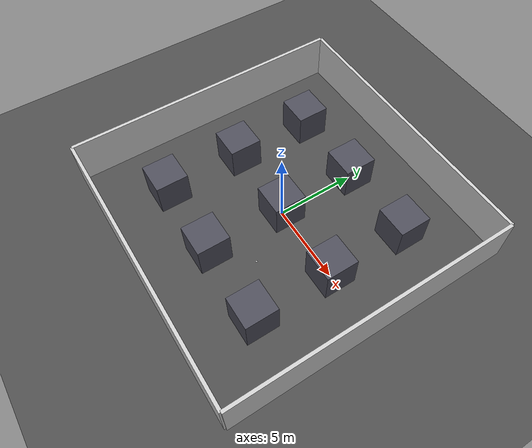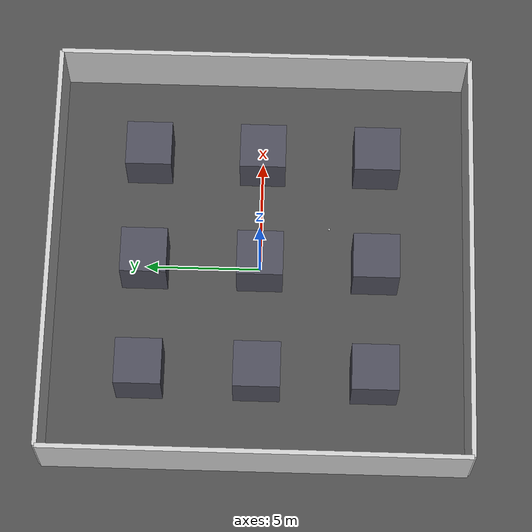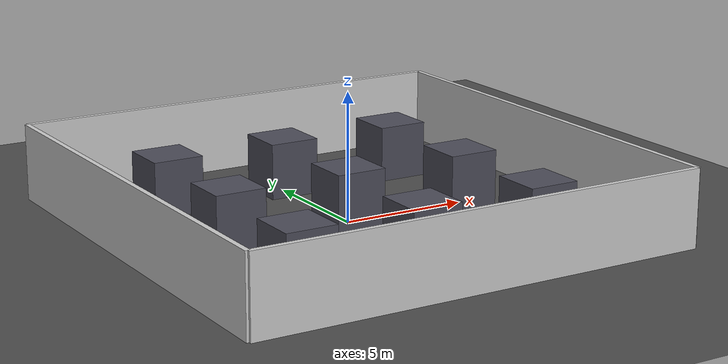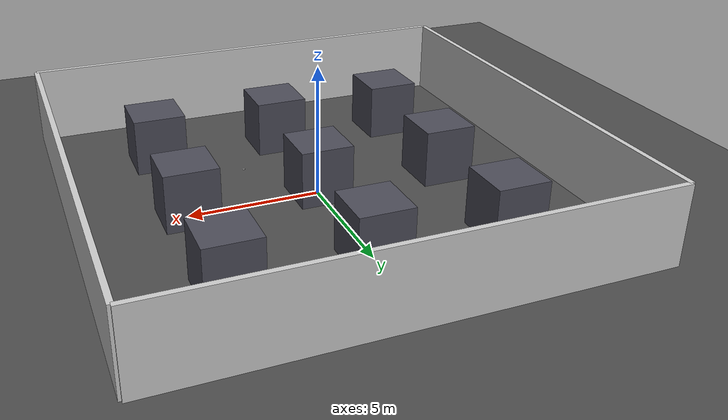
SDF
<?xml version="1.0" ?>
<sdf version="1.9">
  <world name="warehouse_world">
    <gravity>0 0 -9.8</gravity>

    <!-- sun -->
    <light name="sun" type="directional">
      <cast_shadows>true</cast_shadows>
      <pose>0 0 10 0 0 0</pose>
      <diffuse>1 1 1 1</diffuse>
      <specular>0.1 0.1 0.1 1</specular>
      <direction>-0.5 0.5 -1</direction>
    </light>

    <!-- ground plane -->
    <model name="ground_plane">
      <static>true</static>
      <link name="ground_link">
        <collision name="collision">
          <geometry>
            <plane>
              <normal>0 0 1</normal>
              <size>100 100</size>
            </plane>
          </geometry>
          <surface>
            <friction>
              <ode>
                <mu>100</mu>
                <mu2>50</mu2>
              </ode>
            </friction>
          </surface>
        </collision>
        <visual name="visual">
          <geometry>
            <plane>
              <normal>0 0 1</normal>
              <size>100 100</size>
            </plane>
          </geometry>
          <material>
            <ambient>0.3 0.3 0.3 1</ambient>
            <diffuse>0.3 0.3 0.3 1</diffuse>
          </material>
        </visual>
      </link>
    </model>

    <!-- robot spawn point -->
    <model name="spawn_point">
      <static>true</static>
      <pose>2  -3  0  0 0 0</pose>
      <link name="marker">
        <visual name="v"><geometry><cylinder><radius>0.05</radius><length>0.01</length></cylinder></geometry></visual>
      </link>
    </model>

    <!-- 四面牆：確保邊界通道也等寬 (= W) -->
    <model name="wall_north">
      <static>true</static>
      <pose>0 9.0 1.5 0 0 0</pose>
      <link name="l">
        <collision name="c"><geometry><box><size>18.0 0.2 3.0</size></box></geometry></collision>
        <visual name="v"><geometry><box><size>18.0 0.2 3.0</size></box></geometry>
          <material><ambient>0.8 0.8 0.8 1</ambient></material></visual>
      </link>
    </model>
    <model name="wall_south">
      <static>true</static>
      <pose>0 -9.0 1.5 0 0 0</pose>
      <link name="l">
        <collision name="c"><geometry><box><size>18.0 0.2 3.0</size></box></geometry></collision>
        <visual name="v"><geometry><box><size>18.0 0.2 3.0</size></box></geometry>
          <material><ambient>0.8 0.8 0.8 1</ambient></material></visual>
      </link>
    </model>
    <model name="wall_east">
      <static>true</static>
      <pose>9.0 0 1.5 0 0 0</pose>
      <link name="l">
        <collision name="c"><geometry><box><size>0.2 18.0 3.0</size></box></geometry></collision>
        <visual name="v"><geometry><box><size>0.2 18.0 3.0</size></box></geometry>
          <material><ambient>0.8 0.8 0.8 1</ambient></material></visual>
      </link>
    </model>
    <model name="wall_west">
      <static>true</static>
      <pose>-9.0 0 1.5 0 0 0</pose>
      <link name="l">
        <collision name="c"><geometry><box><size>0.2 18.0 3.0</size></box></geometry></collision>
        <visual name="v"><geometry><box><size>0.2 18.0 3.0</size></box></geometry>
          <material><ambient>0.8 0.8 0.8 1</ambient></material></visual>
      </link>
    </model>

    <!-- 室內點光，避免室內太暗 -->
    <light name="ceiling" type="point">
      <pose>0 0 6 0 0 0</pose>
      <diffuse>0.9 0.9 0.9 1</diffuse>
      <specular>0.2 0.2 0.2 1</specular>
      <attenuation><range>50</range><constant>0.2</constant><linear>0.01</linear><quadratic>0.001</quadratic></attenuation>
      <cast_shadows>1</cast_shadows>
    </light>

    <!-- 9 個貨架（用正方形 Box 代表），中心在 {-5,0,5} × {-5,0,5}，高 2.2 m -->
    <!-- Box 尺寸：2.0 × 2.0 × 2.2；中心 z=1.1 -->
    <model name="shelf_1_1"><static>true</static><pose>-5 5 1.1 0 0 0</pose>
      <link name="b"><collision name="c"><geometry><box><size>2.0 2.0 2.2</size></box></geometry></collision>
        <visual name="v"><geometry><box><size>2.0 2.0 2.2</size></box></geometry>
          <material><ambient>0.3 0.3 0.35 1</ambient></material></visual></link>
    </model>
    <model name="shelf_1_2"><static>true</static><pose>0 5 1.1 0 0 0</pose>
      <link name="b"><collision name="c"><geometry><box><size>2.0 2.0 2.2</size></box></geometry></collision>
        <visual name="v"><geometry><box><size>2.0 2.0 2.2</size></box></geometry>
          <material><ambient>0.3 0.3 0.35 1</ambient></material></visual></link>
    </model>
    <model name="shelf_1_3"><static>true</static><pose>5 5 1.1 0 0 0</pose>
      <link name="b"><collision name="c"><geometry><box><size>2.0 2.0 2.2</size></box></geometry></collision>
        <visual name="v"><geometry><box><size>2.0 2.0 2.2</size></box></geometry>
          <material><ambient>0.3 0.3 0.35 1</ambient></material></visual></link>
    </model>

    <model name="shelf_2_1"><static>true</static><pose>-5 0 1.1 0 0 0</pose>
      <link name="b"><collision name="c"><geometry><box><size>2.0 2.0 2.2</size></box></geometry></collision>
        <visual name="v"><geometry><box><size>2.0 2.0 2.2</size></box></geometry>
          <material><ambient>0.3 0.3 0.35 1</ambient></material></visual></link>
    </model>
    <model name="shelf_2_2"><static>true</static><pose>0 0 1.1 0 0 0</pose>
      <link name="b"><collision name="c"><geometry><box><size>2.0 2.0 2.2</size></box></geometry></collision>
        <visual name="v"><geometry><box><size>2.0 2.0 2.2</size></box></geometry>
          <material><ambient>0.3 0.3 0.35 1</ambient></material></visual></link>
    </model>
    <model name="shelf_2_3"><static>true</static><pose>5 0 1.1 0 0 0</pose>
      <link name="b"><collision name="c"><geometry><box><size>2.0 2.0 2.2</size></box></geometry></collision>
        <visual name="v"><geometry><box><size>2.0 2.0 2.2</size></box></geometry>
          <material><ambient>0.3 0.3 0.35 1</ambient></material></visual></link>
    </model>

    <model name="shelf_3_1"><static>true</static><pose>-5 -5 1.1 0 0 0</pose>
      <link name="b"><collision name="c"><geometry><box><size>2.0 2.0 2.2</size></box></geometry></collision>
        <visual name="v"><geometry><box><size>2.0 2.0 2.2</size></box></geometry>
          <material><ambient>0.3 0.3 0.35 1</ambient></material></visual></link>
    </model>
    <model name="shelf_3_2"><static>true</static><pose>0 -5 1.1 0 0 0</pose>
      <link name="b"><collision name="c"><geometry><box><size>2.0 2.0 2.2</size></box></geometry></collision>
        <visual name="v"><geometry><box><size>2.0 2.0 2.2</size></box></geometry>
          <material><ambient>0.3 0.3 0.35 1</ambient></material></visual></link>
    </model>
    <model name="shelf_3_3"><static>true</static><pose>5 -5 1.1 0 0 0</pose>
      <link name="b"><collision name="c"><geometry><box><size>2.0 2.0 2.2</size></box></geometry></collision>
        <visual name="v"><geometry><box><size>2.0 2.0 2.2</size></box></geometry>
          <material><ambient>0.3 0.3 0.35 1</ambient></material></visual></link>
    </model>
  </world>
</sdf>
